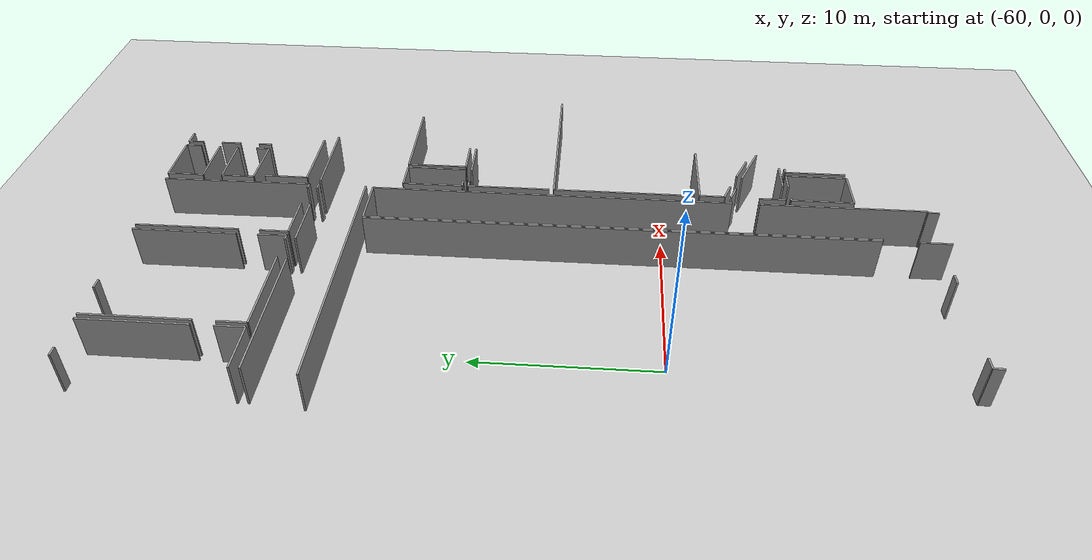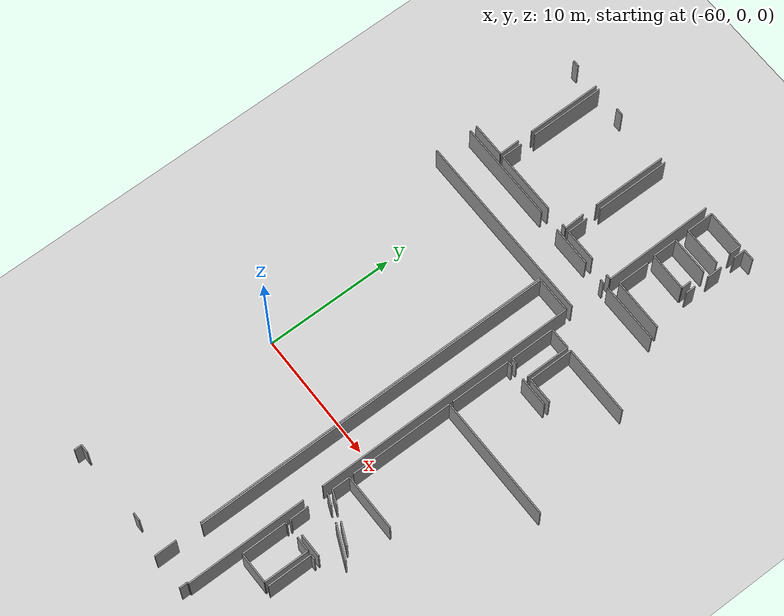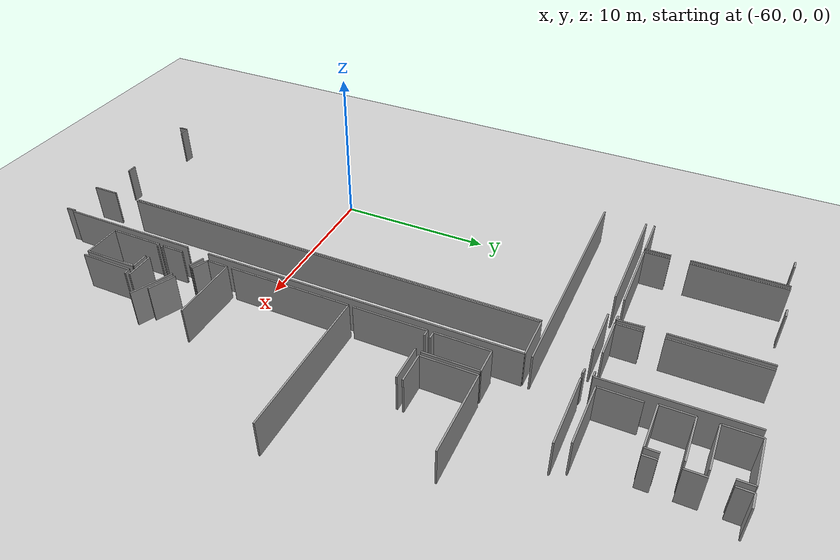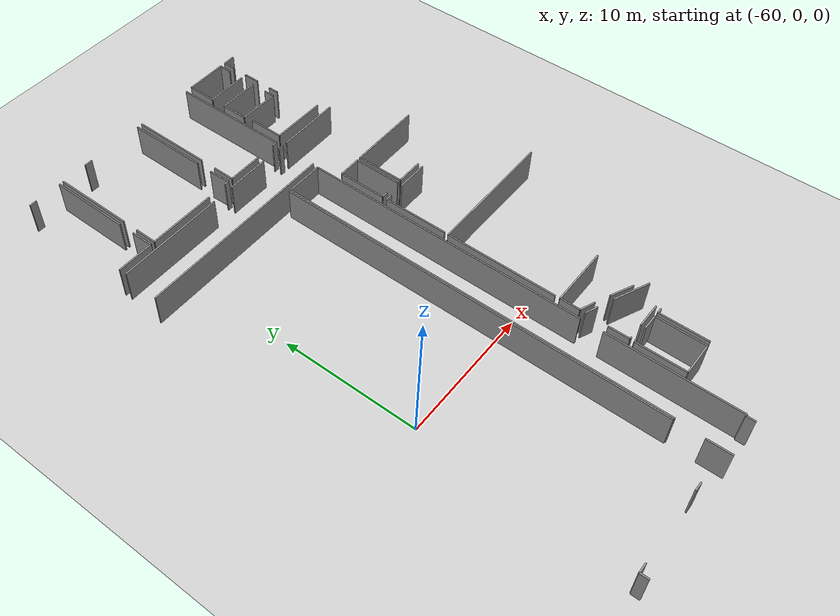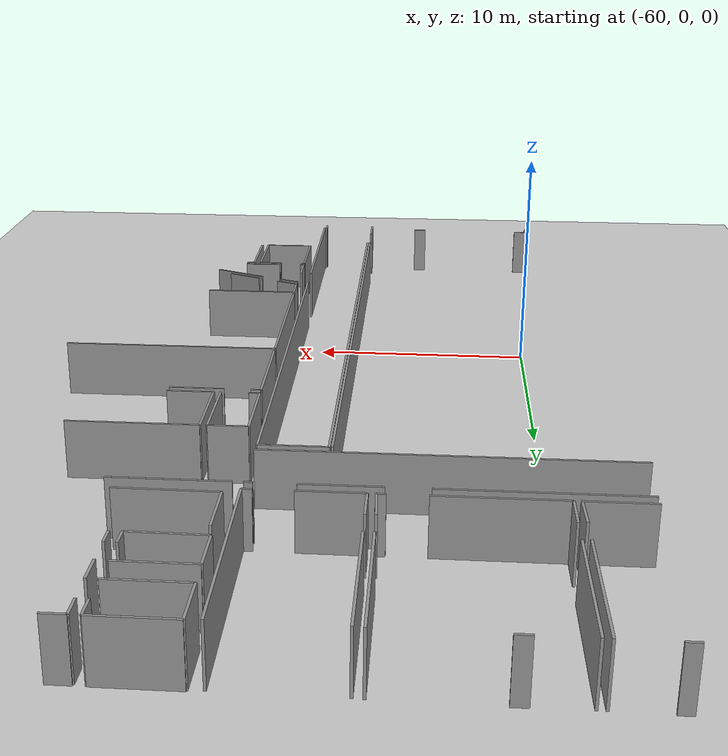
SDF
<sdf version="1.6">
 <world name="default">
  <model name="ground_plane">
   <static>1</static>
   <link name="link">
    <collision name="collision">
     <geometry><plane><normal>0 0 1</normal><size>100 100</size></plane></geometry>
     <surface><friction><ode><mu>100</mu><mu2>50</mu2></ode></friction></surface>
    </collision>
    <visual name="visual">
     <cast_shadows>0</cast_shadows>
     <geometry><plane><normal>0 0 1</normal><size>100 100</size></plane></geometry>
     <material>
      <script><uri>file://media/materials/scripts/gazebo.material</uri><name>Gazebo/Grey</name></script>
     </material>
    </visual>
   </link>
  </model>
  <model name="50010535_PLAN2">
   <static>1</static>
   <link name="Wall_0">
    <collision name="Wall_0_Collision">
     <geometry><box><size>14.9290674257 0.1 2.5</size></box></geometry>
     <pose>7.46453371283 0 1.25 0 0 0</pose>
    </collision>
    <visual name="Wall_0_Visual">
     <pose>7.46453371283 0 1.25 0 0 0</pose>
     <geometry><box><size>14.9290674257 0.1 2.5</size></box></geometry>
     <material>
      <script><uri>file://media/materials/scripts/gazebo.material</uri><name>Gazebo/Grey</name></script>
      <ambient>1 1 1 1</ambient>
     </material>
    </visual>
    <pose>53.7913762762 -12.5641569729 0 0 0 3.14159265359</pose>
   </link>
   <link name="Wall_16">
    <collision name="Wall_16_Collision">
     <geometry><box><size>7.94648132501 0.1 2.5</size></box></geometry>
     <pose>3.9732406625 0 1.25 0 0 0</pose>
    </collision>
    <visual name="Wall_16_Visual">
     <pose>3.9732406625 0 1.25 0 0 0</pose>
     <geometry><box><size>7.94648132501 0.1 2.5</size></box></geometry>
     <material>
      <script><uri>file://media/materials/scripts/gazebo.material</uri><name>Gazebo/Grey</name></script>
      <ambient>1 1 1 1</ambient>
     </material>
    </visual>
    <pose>39.0742489025 -9.76471858859 0 0 0 0.0</pose>
   </link>
   <link name="Wall_17">
    <collision name="Wall_17_Collision">
     <geometry><box><size>3.15140118041 0.1 2.5</size></box></geometry>
     <pose>1.5757005902 0 1.25 0 0 0</pose>
    </collision>
    <visual name="Wall_17_Visual">
     <pose>1.5757005902 0 1.25 0 0 0</pose>
     <geometry><box><size>3.15140118041 0.1 2.5</size></box></geometry>
     <material>
      <script><uri>file://media/materials/scripts/gazebo.material</uri><name>Gazebo/Grey</name></script>
      <ambient>1 1 1 1</ambient>
     </material>
    </visual>
    <pose>48.6992242842 -9.76471858859 0 0 0 0.0</pose>
   </link>
   <link name="Wall_18">
    <collision name="Wall_18_Collision">
     <geometry><box><size>0.35444510742 0.1 2.5</size></box></geometry>
     <pose>0.17722255371 0 1.25 0 0 0</pose>
    </collision>
    <visual name="Wall_18_Visual">
     <pose>0.17722255371 0 1.25 0 0 0</pose>
     <geometry><box><size>0.35444510742 0.1 2.5</size></box></geometry>
     <material>
      <script><uri>file://media/materials/scripts/gazebo.material</uri><name>Gazebo/Grey</name></script>
      <ambient>1 1 1 1</ambient>
     </material>
    </visual>
    <pose>53.4389052305 -9.76471858859 0 0 0 -0.105589964466</pose>
   </link>
   <link name="Wall_51">
    <collision name="Wall_51_Collision">
     <geometry><box><size>2.72294683075 0.1 2.5</size></box></geometry>
     <pose>1.36147341537 0 1.25 0 0 0</pose>
    </collision>
    <visual name="Wall_51_Visual">
     <pose>1.36147341537 0 1.25 0 0 0</pose>
     <geometry><box><size>2.72294683075 0.1 2.5</size></box></geometry>
     <material>
      <script><uri>file://media/materials/scripts/gazebo.material</uri><name>Gazebo/Grey</name></script>
      <ambient>1 1 1 1</ambient>
     </material>
    </visual>
    <pose>41.7816941227 -9.21885859863 0 0 0 3.14159265359</pose>
   </link>
   <link name="Wall_55">
    <collision name="Wall_55_Collision">
     <geometry><box><size>0.538236247086 0.1 2.5</size></box></geometry>
     <pose>0.269118123543 0 1.25 0 0 0</pose>
    </collision>
    <visual name="Wall_55_Visual">
     <pose>0.269118123543 0 1.25 0 0 0</pose>
     <geometry><box><size>0.538236247086 0.1 2.5</size></box></geometry>
     <material>
      <script><uri>file://media/materials/scripts/gazebo.material</uri><name>Gazebo/Grey</name></script>
      <ambient>1 1 1 1</ambient>
     </material>
    </visual>
    <pose>39.2124927733 -0.585020615871 0 0 0 0.0</pose>
   </link>
   <link name="Wall_56">
    <collision name="Wall_56_Collision">
     <geometry><box><size>5.84977414662 0.1 2.5</size></box></geometry>
     <pose>2.92488707331 0 1.25 0 0 0</pose>
    </collision>
    <visual name="Wall_56_Visual">
     <pose>2.92488707331 0 1.25 0 0 0</pose>
     <geometry><box><size>5.84977414662 0.1 2.5</size></box></geometry>
     <material>
      <script><uri>file://media/materials/scripts/gazebo.material</uri><name>Gazebo/Grey</name></script>
      <ambient>1 1 1 1</ambient>
     </material>
    </visual>
    <pose>41.7504367769 -0.585020615871 0 0 0 -1.57079632679</pose>
   </link>
   <link name="Wall_57">
    <collision name="Wall_57_Collision">
     <geometry><box><size>1.59519327845 0.1 2.5</size></box></geometry>
     <pose>0.797596639227 0 1.25 0 0 0</pose>
    </collision>
    <visual name="Wall_57_Visual">
     <pose>0.797596639227 0 1.25 0 0 0</pose>
     <geometry><box><size>1.59519327845 0.1 2.5</size></box></geometry>
     <material>
      <script><uri>file://media/materials/scripts/gazebo.material</uri><name>Gazebo/Grey</name></script>
      <ambient>1 1 1 1</ambient>
     </material>
    </visual>
    <pose>41.7504367769 -7.62397158885 0 0 0 -1.55120036511</pose>
   </link>
   <link name="Wall_58">
    <collision name="Wall_58_Collision">
     <geometry><box><size>0.350692172322 0.1 2.5</size></box></geometry>
     <pose>0.175346086161 0 1.25 0 0 0</pose>
    </collision>
    <visual name="Wall_58_Visual">
     <pose>0.175346086161 0 1.25 0 0 0</pose>
     <geometry><box><size>0.350692172322 0.1 2.5</size></box></geometry>
     <material>
      <script><uri>file://media/materials/scripts/gazebo.material</uri><name>Gazebo/Grey</name></script>
      <ambient>1 1 1 1</ambient>
     </material>
    </visual>
    <pose>48.9757120258 -9.2203833472 0 0 0 3.14159265359</pose>
   </link>
   <link name="Wall_59">
    <collision name="Wall_59_Collision">
     <geometry><box><size>5.02938317567 0.1 2.5</size></box></geometry>
     <pose>2.51469158784 0 1.25 0 0 0</pose>
    </collision>
    <visual name="Wall_59_Visual">
     <pose>2.51469158784 0 1.25 0 0 0</pose>
     <geometry><box><size>5.02938317567 0.1 2.5</size></box></geometry>
     <material>
      <script><uri>file://media/materials/scripts/gazebo.material</uri><name>Gazebo/Grey</name></script>
      <ambient>1 1 1 1</ambient>
     </material>
    </visual>
    <pose>47.1043372744 -9.2203833472 0 0 0 3.14159265359</pose>
   </link>
   <link name="Wall_60">
    <collision name="Wall_60_Collision">
     <geometry><box><size>1.60403550123 0.1 2.5</size></box></geometry>
     <pose>0.802017750615 0 1.25 0 0 0</pose>
    </collision>
    <visual name="Wall_60_Visual">
     <pose>0.802017750615 0 1.25 0 0 0</pose>
     <geometry><box><size>1.60403550123 0.1 2.5</size></box></geometry>
     <material>
      <script><uri>file://media/materials/scripts/gazebo.material</uri><name>Gazebo/Grey</name></script>
      <ambient>1 1 1 1</ambient>
     </material>
    </visual>
    <pose>42.0749540987 -9.2203833472 0 0 0 1.57079632679</pose>
   </link>
   <link name="Wall_61">
    <collision name="Wall_61_Collision">
     <geometry><box><size>5.83775404535 0.1 2.5</size></box></geometry>
     <pose>2.91887702267 0 1.25 0 0 0</pose>
    </collision>
    <visual name="Wall_61_Visual">
     <pose>2.91887702267 0 1.25 0 0 0</pose>
     <geometry><box><size>5.83775404535 0.1 2.5</size></box></geometry>
     <material>
      <script><uri>file://media/materials/scripts/gazebo.material</uri><name>Gazebo/Grey</name></script>
      <ambient>1 1 1 1</ambient>
     </material>
    </visual>
    <pose>42.0749540987 -6.43006804191 0 0 0 1.57079632679</pose>
   </link>
   <link name="Wall_62">
    <collision name="Wall_62_Collision">
     <geometry><box><size>0.601767437724 0.1 2.5</size></box></geometry>
     <pose>0.300883718862 0 1.25 0 0 0</pose>
    </collision>
    <visual name="Wall_62_Visual">
     <pose>0.300883718862 0 1.25 0 0 0</pose>
     <geometry><box><size>0.601767437724 0.1 2.5</size></box></geometry>
     <material>
      <script><uri>file://media/materials/scripts/gazebo.material</uri><name>Gazebo/Grey</name></script>
      <ambient>1 1 1 1</ambient>
     </material>
    </visual>
    <pose>44.0185002827 -0.592313996557 0 0 0 0.0</pose>
   </link>
   <link name="Wall_63">
    <collision name="Wall_63_Collision">
     <geometry><box><size>5.84024446802 0.1 2.5</size></box></geometry>
     <pose>2.92012223401 0 1.25 0 0 0</pose>
    </collision>
    <visual name="Wall_63_Visual">
     <pose>2.92012223401 0 1.25 0 0 0</pose>
     <geometry><box><size>5.84024446802 0.1 2.5</size></box></geometry>
     <material>
      <script><uri>file://media/materials/scripts/gazebo.material</uri><name>Gazebo/Grey</name></script>
      <ambient>1 1 1 1</ambient>
     </material>
    </visual>
    <pose>48.9098937123 -0.592313996557 0 0 0 -1.57079632679</pose>
   </link>
   <link name="Wall_64">
    <collision name="Wall_64_Collision">
     <geometry><box><size>1.59294373125 0.1 2.5</size></box></geometry>
     <pose>0.796471865623 0 1.25 0 0 0</pose>
    </collision>
    <visual name="Wall_64_Visual">
     <pose>0.796471865623 0 1.25 0 0 0</pose>
     <geometry><box><size>1.59294373125 0.1 2.5</size></box></geometry>
     <material>
      <script><uri>file://media/materials/scripts/gazebo.material</uri><name>Gazebo/Grey</name></script>
      <ambient>1 1 1 1</ambient>
     </material>
    </visual>
    <pose>48.9098937123 -7.62879995934 0 0 0 -1.52946589279</pose>
   </link>
   <link name="Wall_65">
    <collision name="Wall_65_Collision">
     <geometry><box><size>0.392368633381 0.1 2.5</size></box></geometry>
     <pose>0.19618431669 0 1.25 0 0 0</pose>
    </collision>
    <visual name="Wall_65_Visual">
     <pose>0.19618431669 0 1.25 0 0 0</pose>
     <geometry><box><size>0.392368633381 0.1 2.5</size></box></geometry>
     <material>
      <script><uri>file://media/materials/scripts/gazebo.material</uri><name>Gazebo/Grey</name></script>
      <ambient>1 1 1 1</ambient>
     </material>
    </visual>
    <pose>53.7990000191 -9.22699059103 0 0 0 3.14159265359</pose>
   </link>
   <link name="Wall_66">
    <collision name="Wall_66_Collision">
     <geometry><box><size>2.59003957993 0.1 2.5</size></box></geometry>
     <pose>1.29501978997 0 1.25 0 0 0</pose>
    </collision>
    <visual name="Wall_66_Visual">
     <pose>1.29501978997 0 1.25 0 0 0</pose>
     <geometry><box><size>2.59003957993 0.1 2.5</size></box></geometry>
     <material>
      <script><uri>file://media/materials/scripts/gazebo.material</uri><name>Gazebo/Grey</name></script>
      <ambient>1 1 1 1</ambient>
     </material>
    </visual>
    <pose>51.889760678 -9.22699059103 0 0 0 3.14159265359</pose>
   </link>
   <link name="Wall_67">
    <collision name="Wall_67_Collision">
     <geometry><box><size>1.60454375075 0.1 2.5</size></box></geometry>
     <pose>0.802271875377 0 1.25 0 0 0</pose>
    </collision>
    <visual name="Wall_67_Visual">
     <pose>0.802271875377 0 1.25 0 0 0</pose>
     <geometry><box><size>1.60454375075 0.1 2.5</size></box></geometry>
     <material>
      <script><uri>file://media/materials/scripts/gazebo.material</uri><name>Gazebo/Grey</name></script>
      <ambient>1 1 1 1</ambient>
     </material>
    </visual>
    <pose>49.2997210981 -9.22699059103 0 0 0 1.57079632679</pose>
   </link>
   <link name="Wall_68">
    <collision name="Wall_68_Collision">
     <geometry><box><size>5.80713201146 0.1 2.5</size></box></geometry>
     <pose>2.90356600573 0 1.25 0 0 0</pose>
    </collision>
    <visual name="Wall_68_Visual">
     <pose>2.90356600573 0 1.25 0 0 0</pose>
     <geometry><box><size>5.80713201146 0.1 2.5</size></box></geometry>
     <material>
      <script><uri>file://media/materials/scripts/gazebo.material</uri><name>Gazebo/Grey</name></script>
      <ambient>1 1 1 1</ambient>
     </material>
    </visual>
    <pose>49.2997210981 -6.43006804191 0 0 0 1.57079632679</pose>
   </link>
   <link name="Wall_69">
    <collision name="Wall_69_Collision">
     <geometry><box><size>8.60440137667 0.1 2.5</size></box></geometry>
     <pose>4.30220068834 0 1.25 0 0 0</pose>
    </collision>
    <visual name="Wall_69_Visual">
     <pose>4.30220068834 0 1.25 0 0 0</pose>
     <geometry><box><size>8.60440137667 0.1 2.5</size></box></geometry>
     <material>
      <script><uri>file://media/materials/scripts/gazebo.material</uri><name>Gazebo/Grey</name></script>
      <ambient>1 1 1 1</ambient>
     </material>
    </visual>
    <pose>53.7217460912 -0.622936030444 0 0 0 -1.56181778635</pose>
   </link>
   <link name="Wall_72">
    <collision name="Wall_72_Collision">
     <geometry><box><size>0.63226240923 0.1 2.5</size></box></geometry>
     <pose>0.316131204615 0 1.25 0 0 0</pose>
    </collision>
    <visual name="Wall_72_Visual">
     <pose>0.316131204615 0 1.25 0 0 0</pose>
     <geometry><box><size>0.63226240923 0.1 2.5</size></box></geometry>
     <material>
      <script><uri>file://media/materials/scripts/gazebo.material</uri><name>Gazebo/Grey</name></script>
      <ambient>1 1 1 1</ambient>
     </material>
    </visual>
    <pose>48.2379878401 -44.5937879202 0 0 0 3.14159265359</pose>
   </link>
   <link name="Wall_76">
    <collision name="Wall_76_Collision">
     <geometry><box><size>0.668348125512 0.1 2.5</size></box></geometry>
     <pose>0.334174062756 0 1.25 0 0 0</pose>
    </collision>
    <visual name="Wall_76_Visual">
     <pose>0.334174062756 0 1.25 0 0 0</pose>
     <geometry><box><size>0.668348125512 0.1 2.5</size></box></geometry>
     <material>
      <script><uri>file://media/materials/scripts/gazebo.material</uri><name>Gazebo/Grey</name></script>
      <ambient>1 1 1 1</ambient>
     </material>
    </visual>
    <pose>42.2769832849 -44.5777780601 0 0 0 3.14159265359</pose>
   </link>
   <link name="Wall_77">
    <collision name="Wall_77_Collision">
     <geometry><box><size>0.595668443422 0.1 2.5</size></box></geometry>
     <pose>0.297834221711 0 1.25 0 0 0</pose>
    </collision>
    <visual name="Wall_77_Visual">
     <pose>0.297834221711 0 1.25 0 0 0</pose>
     <geometry><box><size>0.595668443422 0.1 2.5</size></box></geometry>
     <material>
      <script><uri>file://media/materials/scripts/gazebo.material</uri><name>Gazebo/Grey</name></script>
      <ambient>1 1 1 1</ambient>
     </material>
    </visual>
    <pose>41.6086351594 -44.5777780601 0 0 0 -1.57079632679</pose>
   </link>
   <link name="Wall_86">
    <collision name="Wall_86_Collision">
     <geometry><box><size>28.5059369898 0.1 2.5</size></box></geometry>
     <pose>14.2529684949 0 1.25 0 0 0</pose>
    </collision>
    <visual name="Wall_86_Visual">
     <pose>14.2529684949 0 1.25 0 0 0</pose>
     <geometry><box><size>28.5059369898 0.1 2.5</size></box></geometry>
     <material>
      <script><uri>file://media/materials/scripts/gazebo.material</uri><name>Gazebo/Grey</name></script>
      <ambient>1 1 1 1</ambient>
     </material>
    </visual>
    <pose>50.8320934163 -12.9966773187 0 0 0 -1.57079632679</pose>
   </link>
   <link name="Wall_87">
    <collision name="Wall_87_Collision">
     <geometry><box><size>1.73954644382 0.1 2.5</size></box></geometry>
     <pose>0.869773221908 0 1.25 0 0 0</pose>
    </collision>
    <visual name="Wall_87_Visual">
     <pose>0.869773221908 0 1.25 0 0 0</pose>
     <geometry><box><size>1.73954644382 0.1 2.5</size></box></geometry>
     <material>
      <script><uri>file://media/materials/scripts/gazebo.material</uri><name>Gazebo/Grey</name></script>
      <ambient>1 1 1 1</ambient>
     </material>
    </visual>
    <pose>50.8320934163 -43.4852957059 0 0 0 -1.56232319137</pose>
   </link>
   <link name="Wall_125">
    <collision name="Wall_125_Collision">
     <geometry><box><size>4.69444673863 0.1 2.5</size></box></geometry>
     <pose>2.34722336931 0 1.25 0 0 0</pose>
    </collision>
    <visual name="Wall_125_Visual">
     <pose>2.34722336931 0 1.25 0 0 0</pose>
     <geometry><box><size>4.69444673863 0.1 2.5</size></box></geometry>
     <material>
      <script><uri>file://media/materials/scripts/gazebo.material</uri><name>Gazebo/Grey</name></script>
      <ambient>1 1 1 1</ambient>
     </material>
    </visual>
    <pose>54.1949263991 -9.77996607434 0 0 0 0.0</pose>
   </link>
   <link name="Wall_142">
    <collision name="Wall_142_Collision">
     <geometry><box><size>2.51276023964 0.1 2.5</size></box></geometry>
     <pose>1.25638011982 0 1.25 0 0 0</pose>
    </collision>
    <visual name="Wall_142_Visual">
     <pose>1.25638011982 0 1.25 0 0 0</pose>
     <geometry><box><size>2.51276023964 0.1 2.5</size></box></geometry>
     <material>
      <script><uri>file://media/materials/scripts/gazebo.material</uri><name>Gazebo/Grey</name></script>
      <ambient>1 1 1 1</ambient>
     </material>
    </visual>
    <pose>54.4399026702 -6.40826413728 0 0 0 -1.57079632679</pose>
   </link>
   <link name="Wall_143">
    <collision name="Wall_143_Collision">
     <geometry><box><size>4.04536231223 0.1 2.5</size></box></geometry>
     <pose>2.02268115612 0 1.25 0 0 0</pose>
    </collision>
    <visual name="Wall_143_Visual">
     <pose>2.02268115612 0 1.25 0 0 0</pose>
     <geometry><box><size>4.04536231223 0.1 2.5</size></box></geometry>
     <material>
      <script><uri>file://media/materials/scripts/gazebo.material</uri><name>Gazebo/Grey</name></script>
      <ambient>1 1 1 1</ambient>
     </material>
    </visual>
    <pose>54.4399026702 -8.92102437692 0 0 0 -0.0100511755185</pose>
   </link>
   <link name="Wall_146">
    <collision name="Wall_146_Collision">
     <geometry><box><size>0.771954791205 0.1 2.5</size></box></geometry>
     <pose>0.385977395602 0 1.25 0 0 0</pose>
    </collision>
    <visual name="Wall_146_Visual">
     <pose>0.385977395602 0 1.25 0 0 0</pose>
     <geometry><box><size>0.771954791205 0.1 2.5</size></box></geometry>
     <material>
      <script><uri>file://media/materials/scripts/gazebo.material</uri><name>Gazebo/Grey</name></script>
      <ambient>1 1 1 1</ambient>
     </material>
    </visual>
    <pose>57.7648710634 -5.79844094458 0 0 0 1.57079632679</pose>
   </link>
   <link name="Wall_147">
    <collision name="Wall_147_Collision">
     <geometry><box><size>1.18765207779 0.1 2.5</size></box></geometry>
     <pose>0.593826038894 0 1.25 0 0 0</pose>
    </collision>
    <visual name="Wall_147_Visual">
     <pose>0.593826038894 0 1.25 0 0 0</pose>
     <geometry><box><size>1.18765207779 0.1 2.5</size></box></geometry>
     <material>
      <script><uri>file://media/materials/scripts/gazebo.material</uri><name>Gazebo/Grey</name></script>
      <ambient>1 1 1 1</ambient>
     </material>
    </visual>
    <pose>57.7648710634 -3.86998977148 0 0 0 1.57079632679</pose>
   </link>
   <link name="Wall_148">
    <collision name="Wall_148_Collision">
     <geometry><box><size>0.909665000032 0.1 2.5</size></box></geometry>
     <pose>0.454832500016 0 1.25 0 0 0</pose>
    </collision>
    <visual name="Wall_148_Visual">
     <pose>0.454832500016 0 1.25 0 0 0</pose>
     <geometry><box><size>0.909665000032 0.1 2.5</size></box></geometry>
     <material>
      <script><uri>file://media/materials/scripts/gazebo.material</uri><name>Gazebo/Grey</name></script>
      <ambient>1 1 1 1</ambient>
     </material>
    </visual>
    <pose>57.7648710634 -1.51997102978 0 0 0 1.57079632679</pose>
   </link>
   <link name="Wall_149">
    <collision name="Wall_149_Collision">
     <geometry><box><size>0.897060411809 0.1 2.5</size></box></geometry>
     <pose>0.448530205905 0 1.25 0 0 0</pose>
    </collision>
    <visual name="Wall_149_Visual">
     <pose>0.448530205905 0 1.25 0 0 0</pose>
     <geometry><box><size>0.897060411809 0.1 2.5</size></box></geometry>
     <material>
      <script><uri>file://media/materials/scripts/gazebo.material</uri><name>Gazebo/Grey</name></script>
      <ambient>1 1 1 1</ambient>
     </material>
    </visual>
    <pose>57.7648710634 -0.610306029745 0 0 0 0.0</pose>
   </link>
   <link name="Wall_152">
    <collision name="Wall_152_Collision">
     <geometry><box><size>0.780035958654 0.1 2.5</size></box></geometry>
     <pose>0.390017979327 0 1.25 0 0 0</pose>
    </collision>
    <visual name="Wall_152_Visual">
     <pose>0.390017979327 0 1.25 0 0 0</pose>
     <geometry><box><size>0.780035958654 0.1 2.5</size></box></geometry>
     <material>
      <script><uri>file://media/materials/scripts/gazebo.material</uri><name>Gazebo/Grey</name></script>
      <ambient>1 1 1 1</ambient>
     </material>
    </visual>
    <pose>57.2962650013 -5.78987694008 0 0 0 1.57079632679</pose>
   </link>
   <link name="Wall_153">
    <collision name="Wall_153_Collision">
     <geometry><box><size>2.99918044764 0.1 2.5</size></box></geometry>
     <pose>1.49959022382 0 1.25 0 0 0</pose>
    </collision>
    <visual name="Wall_153_Visual">
     <pose>1.49959022382 0 1.25 0 0 0</pose>
     <geometry><box><size>2.99918044764 0.1 2.5</size></box></geometry>
     <material>
      <script><uri>file://media/materials/scripts/gazebo.material</uri><name>Gazebo/Grey</name></script>
      <ambient>1 1 1 1</ambient>
     </material>
    </visual>
    <pose>57.2962650013 -3.83428524234 0 0 0 3.14159265359</pose>
   </link>
   <link name="Wall_154">
    <collision name="Wall_154_Collision">
     <geometry><box><size>1.9116535263 0.1 2.5</size></box></geometry>
     <pose>0.955826763149 0 1.25 0 0 0</pose>
    </collision>
    <visual name="Wall_154_Visual">
     <pose>0.955826763149 0 1.25 0 0 0</pose>
     <geometry><box><size>1.9116535263 0.1 2.5</size></box></geometry>
     <material>
      <script><uri>file://media/materials/scripts/gazebo.material</uri><name>Gazebo/Grey</name></script>
      <ambient>1 1 1 1</ambient>
     </material>
    </visual>
    <pose>54.2970845537 -3.83428524234 0 0 0 -1.57079632679</pose>
   </link>
   <link name="Wall_155">
    <collision name="Wall_155_Collision">
     <geometry><box><size>2.99950227878 0.1 2.5</size></box></geometry>
     <pose>1.49975113939 0 1.25 0 0 0</pose>
    </collision>
    <visual name="Wall_155_Visual">
     <pose>1.49975113939 0 1.25 0 0 0</pose>
     <geometry><box><size>2.99950227878 0.1 2.5</size></box></geometry>
     <material>
      <script><uri>file://media/materials/scripts/gazebo.material</uri><name>Gazebo/Grey</name></script>
      <ambient>1 1 1 1</ambient>
     </material>
    </visual>
    <pose>54.2970845537 -5.74593876864 0 0 0 -0.014649011361</pose>
   </link>
   <link name="Wall_156">
    <collision name="Wall_156_Collision">
     <geometry><box><size>0.917136268051 0.1 2.5</size></box></geometry>
     <pose>0.458568134025 0 1.25 0 0 0</pose>
    </collision>
    <visual name="Wall_156_Visual">
     <pose>0.458568134025 0 1.25 0 0 0</pose>
     <geometry><box><size>0.917136268051 0.1 2.5</size></box></geometry>
     <material>
      <script><uri>file://media/materials/scripts/gazebo.material</uri><name>Gazebo/Grey</name></script>
      <ambient>1 1 1 1</ambient>
     </material>
    </visual>
    <pose>57.3359084643 -1.51900535568 0 0 0 1.57079632679</pose>
   </link>
   <link name="Wall_157">
    <collision name="Wall_157_Collision">
     <geometry><box><size>3.0571208935 0.1 2.5</size></box></geometry>
     <pose>1.52856044675 0 1.25 0 0 0</pose>
    </collision>
    <visual name="Wall_157_Visual">
     <pose>1.52856044675 0 1.25 0 0 0</pose>
     <geometry><box><size>3.0571208935 0.1 2.5</size></box></geometry>
     <material>
      <script><uri>file://media/materials/scripts/gazebo.material</uri><name>Gazebo/Grey</name></script>
      <ambient>1 1 1 1</ambient>
     </material>
    </visual>
    <pose>57.3359084643 -0.601869087629 0 0 0 3.14159265359</pose>
   </link>
   <link name="Wall_158">
    <collision name="Wall_158_Collision">
     <geometry><box><size>2.09220917009 0.1 2.5</size></box></geometry>
     <pose>1.04610458505 0 1.25 0 0 0</pose>
    </collision>
    <visual name="Wall_158_Visual">
     <pose>1.04610458505 0 1.25 0 0 0</pose>
     <geometry><box><size>2.09220917009 0.1 2.5</size></box></geometry>
     <material>
      <script><uri>file://media/materials/scripts/gazebo.material</uri><name>Gazebo/Grey</name></script>
      <ambient>1 1 1 1</ambient>
     </material>
    </visual>
    <pose>54.2787875708 -0.601869087629 0 0 0 -1.57079632679</pose>
   </link>
   <link name="Wall_159">
    <collision name="Wall_159_Collision">
     <geometry><box><size>3.05713582578 0.1 2.5</size></box></geometry>
     <pose>1.52856791289 0 1.25 0 0 0</pose>
    </collision>
    <visual name="Wall_159_Visual">
     <pose>1.52856791289 0 1.25 0 0 0</pose>
     <geometry><box><size>3.05713582578 0.1 2.5</size></box></geometry>
     <material>
      <script><uri>file://media/materials/scripts/gazebo.material</uri><name>Gazebo/Grey</name></script>
      <ambient>1 1 1 1</ambient>
     </material>
    </visual>
    <pose>54.2787875708 -2.69407825772 0 0 0 -0.00312550935696</pose>
   </link>
   <link name="Wall_768">
    <collision name="Wall_768_Collision">
     <geometry><box><size>4.71401434534 0.1 2.5</size></box></geometry>
     <pose>2.35700717267 0 1.25 0 0 0</pose>
    </collision>
    <visual name="Wall_768_Visual">
     <pose>2.35700717267 0 1.25 0 0 0</pose>
     <geometry><box><size>4.71401434534 0.1 2.5</size></box></geometry>
     <material>
      <script><uri>file://media/materials/scripts/gazebo.material</uri><name>Gazebo/Grey</name></script>
      <ambient>1 1 1 1</ambient>
     </material>
    </visual>
    <pose>54.2726885765 -23.2152881457 0 0 0 1.57079632679</pose>
   </link>
   <link name="Wall_769">
    <collision name="Wall_769_Collision">
     <geometry><box><size>0.441668837316 0.1 2.5</size></box></geometry>
     <pose>0.220834418658 0 1.25 0 0 0</pose>
    </collision>
    <visual name="Wall_769_Visual">
     <pose>0.220834418658 0 1.25 0 0 0</pose>
     <geometry><box><size>0.441668837316 0.1 2.5</size></box></geometry>
     <material>
      <script><uri>file://media/materials/scripts/gazebo.material</uri><name>Gazebo/Grey</name></script>
      <ambient>1 1 1 1</ambient>
     </material>
    </visual>
    <pose>54.2726885765 -18.5012738004 0 0 0 0.0</pose>
   </link>
   <link name="Wall_770">
    <collision name="Wall_770_Collision">
     <geometry><box><size>2.35116230313 0.1 2.5</size></box></geometry>
     <pose>1.17558115157 0 1.25 0 0 0</pose>
    </collision>
    <visual name="Wall_770_Visual">
     <pose>1.17558115157 0 1.25 0 0 0</pose>
     <geometry><box><size>2.35116230313 0.1 2.5</size></box></geometry>
     <material>
      <script><uri>file://media/materials/scripts/gazebo.material</uri><name>Gazebo/Grey</name></script>
      <ambient>1 1 1 1</ambient>
     </material>
    </visual>
    <pose>55.8459749814 -18.5012738004 0 0 0 0.0</pose>
   </link>
   <link name="Wall_776">
    <collision name="Wall_776_Collision">
     <geometry><box><size>0.467589563096 0.1 2.5</size></box></geometry>
     <pose>0.233794781548 0 1.25 0 0 0</pose>
    </collision>
    <visual name="Wall_776_Visual">
     <pose>0.233794781548 0 1.25 0 0 0</pose>
     <geometry><box><size>0.467589563096 0.1 2.5</size></box></geometry>
     <material>
      <script><uri>file://media/materials/scripts/gazebo.material</uri><name>Gazebo/Grey</name></script>
      <ambient>1 1 1 1</ambient>
     </material>
    </visual>
    <pose>54.7453606348 -18.1343176432 0 0 0 3.14159265359</pose>
   </link>
   <link name="Wall_777">
    <collision name="Wall_777_Collision">
     <geometry><box><size>3.44923540212 0.1 2.5</size></box></geometry>
     <pose>1.72461770106 0 1.25 0 0 0</pose>
    </collision>
    <visual name="Wall_777_Visual">
     <pose>1.72461770106 0 1.25 0 0 0</pose>
     <geometry><box><size>3.44923540212 0.1 2.5</size></box></geometry>
     <material>
      <script><uri>file://media/materials/scripts/gazebo.material</uri><name>Gazebo/Grey</name></script>
      <ambient>1 1 1 1</ambient>
     </material>
    </visual>
    <pose>54.2777710717 -18.1343176432 0 0 0 1.57079632679</pose>
   </link>
   <link name="Wall_778">
    <collision name="Wall_778_Collision">
     <geometry><box><size>1.6551145785 0.1 2.5</size></box></geometry>
     <pose>0.827557289251 0 1.25 0 0 0</pose>
    </collision>
    <visual name="Wall_778_Visual">
     <pose>0.827557289251 0 1.25 0 0 0</pose>
     <geometry><box><size>1.6551145785 0.1 2.5</size></box></geometry>
     <material>
      <script><uri>file://media/materials/scripts/gazebo.material</uri><name>Gazebo/Grey</name></script>
      <ambient>1 1 1 1</ambient>
     </material>
    </visual>
    <pose>54.2777710717 -14.6850822411 0 0 0 0.0</pose>
   </link>
   <link name="Wall_779">
    <collision name="Wall_779_Collision">
     <geometry><box><size>3.44923540212 0.1 2.5</size></box></geometry>
     <pose>1.72461770106 0 1.25 0 0 0</pose>
    </collision>
    <visual name="Wall_779_Visual">
     <pose>1.72461770106 0 1.25 0 0 0</pose>
     <geometry><box><size>3.44923540212 0.1 2.5</size></box></geometry>
     <material>
      <script><uri>file://media/materials/scripts/gazebo.material</uri><name>Gazebo/Grey</name></script>
      <ambient>1 1 1 1</ambient>
     </material>
    </visual>
    <pose>55.9328856502 -14.6850822411 0 0 0 -1.57079632679</pose>
   </link>
   <link name="Wall_781">
    <collision name="Wall_781_Collision">
     <geometry><box><size>1.99843713271 0.1 2.5</size></box></geometry>
     <pose>0.999218566355 0 1.25 0 0 0</pose>
    </collision>
    <visual name="Wall_781_Visual">
     <pose>0.999218566355 0 1.25 0 0 0</pose>
     <geometry><box><size>1.99843713271 0.1 2.5</size></box></geometry>
     <material>
      <script><uri>file://media/materials/scripts/gazebo.material</uri><name>Gazebo/Grey</name></script>
      <ambient>1 1 1 1</ambient>
     </material>
    </visual>
    <pose>58.2301735037 -18.1190701575 0 0 0 3.14159265359</pose>
   </link>
   <link name="Wall_782">
    <collision name="Wall_782_Collision">
     <geometry><box><size>3.45152252498 0.1 2.5</size></box></geometry>
     <pose>1.72576126249 0 1.25 0 0 0</pose>
    </collision>
    <visual name="Wall_782_Visual">
     <pose>1.72576126249 0 1.25 0 0 0</pose>
     <geometry><box><size>3.45152252498 0.1 2.5</size></box></geometry>
     <material>
      <script><uri>file://media/materials/scripts/gazebo.material</uri><name>Gazebo/Grey</name></script>
      <ambient>1 1 1 1</ambient>
     </material>
    </visual>
    <pose>56.231736371 -18.1190701575 0 0 0 1.57079632679</pose>
   </link>
   <link name="Wall_783">
    <collision name="Wall_783_Collision">
     <geometry><box><size>5.47511800919 0.1 2.5</size></box></geometry>
     <pose>2.73755900459 0 1.25 0 0 0</pose>
    </collision>
    <visual name="Wall_783_Visual">
     <pose>2.73755900459 0 1.25 0 0 0</pose>
     <geometry><box><size>5.47511800919 0.1 2.5</size></box></geometry>
     <material>
      <script><uri>file://media/materials/scripts/gazebo.material</uri><name>Gazebo/Grey</name></script>
      <ambient>1 1 1 1</ambient>
     </material>
    </visual>
    <pose>56.231736371 -14.6675476325 0 0 0 0.0</pose>
   </link>
   <link name="Wall_786">
    <collision name="Wall_786_Collision">
     <geometry><box><size>8.06414109007 0.1 2.5</size></box></geometry>
     <pose>4.03207054503 0 1.25 0 0 0</pose>
    </collision>
    <visual name="Wall_786_Visual">
     <pose>4.03207054503 0 1.25 0 0 0</pose>
     <geometry><box><size>8.06414109007 0.1 2.5</size></box></geometry>
     <material>
      <script><uri>file://media/materials/scripts/gazebo.material</uri><name>Gazebo/Grey</name></script>
      <ambient>1 1 1 1</ambient>
     </material>
    </visual>
    <pose>54.2637942098 -31.5592205994 0 0 0 1.57079632679</pose>
   </link>
   <link name="Wall_787">
    <collision name="Wall_787_Collision">
     <geometry><box><size>9.69130194469 0.1 2.5</size></box></geometry>
     <pose>4.84565097234 0 1.25 0 0 0</pose>
    </collision>
    <visual name="Wall_787_Visual">
     <pose>4.84565097234 0 1.25 0 0 0</pose>
     <geometry><box><size>9.69130194469 0.1 2.5</size></box></geometry>
     <material>
      <script><uri>file://media/materials/scripts/gazebo.material</uri><name>Gazebo/Grey</name></script>
      <ambient>1 1 1 1</ambient>
     </material>
    </visual>
    <pose>54.2637942098 -23.4950795093 0 0 0 0.0</pose>
   </link>
   <link name="Wall_804">
    <collision name="Wall_804_Collision">
     <geometry><box><size>28.551679447 0.1 2.5</size></box></geometry>
     <pose>14.2758397235 0 1.25 0 0 0</pose>
    </collision>
    <visual name="Wall_804_Visual">
     <pose>14.2758397235 0 1.25 0 0 0</pose>
     <geometry><box><size>28.551679447 0.1 2.5</size></box></geometry>
     <material>
      <script><uri>file://media/materials/scripts/gazebo.material</uri><name>Gazebo/Grey</name></script>
      <ambient>1 1 1 1</ambient>
     </material>
    </visual>
    <pose>50.9474660585 -41.5564887582 0 0 0 1.57079632679</pose>
   </link>
   <link name="Wall_805">
    <collision name="Wall_805_Collision">
     <geometry><box><size>2.76436916704 0.1 2.5</size></box></geometry>
     <pose>1.38218458352 0 1.25 0 0 0</pose>
    </collision>
    <visual name="Wall_805_Visual">
     <pose>1.38218458352 0 1.25 0 0 0</pose>
     <geometry><box><size>2.76436916704 0.1 2.5</size></box></geometry>
     <material>
      <script><uri>file://media/materials/scripts/gazebo.material</uri><name>Gazebo/Grey</name></script>
      <ambient>1 1 1 1</ambient>
     </material>
    </visual>
    <pose>50.9474660585 -13.0048093111 0 0 0 0.0</pose>
   </link>
   <link name="Wall_806">
    <collision name="Wall_806_Collision">
     <geometry><box><size>20.6849932975 0.1 2.5</size></box></geometry>
     <pose>10.3424966487 0 1.25 0 0 0</pose>
    </collision>
    <visual name="Wall_806_Visual">
     <pose>10.3424966487 0 1.25 0 0 0</pose>
     <geometry><box><size>20.6849932975 0.1 2.5</size></box></geometry>
     <material>
      <script><uri>file://media/materials/scripts/gazebo.material</uri><name>Gazebo/Grey</name></script>
      <ambient>1 1 1 1</ambient>
     </material>
    </visual>
    <pose>53.7118352255 -13.0048093111 0 0 0 -1.57079632679</pose>
   </link>
   <link name="Wall_807">
    <collision name="Wall_807_Collision">
     <geometry><box><size>9.31214779896 0.1 2.5</size></box></geometry>
     <pose>4.65607389948 0 1.25 0 0 0</pose>
    </collision>
    <visual name="Wall_807_Visual">
     <pose>4.65607389948 0 1.25 0 0 0</pose>
     <geometry><box><size>9.31214779896 0.1 2.5</size></box></geometry>
     <material>
      <script><uri>file://media/materials/scripts/gazebo.material</uri><name>Gazebo/Grey</name></script>
      <ambient>1 1 1 1</ambient>
     </material>
    </visual>
    <pose>53.7118352255 -35.2630890136 0 0 0 -1.57079632679</pose>
   </link>
   <link name="Wall_808">
    <collision name="Wall_808_Collision">
     <geometry><box><size>0.112577269811 0.1 2.5</size></box></geometry>
     <pose>0.0562886349053 0 1.25 0 0 0</pose>
    </collision>
    <visual name="Wall_808_Visual">
     <pose>0.0562886349053 0 1.25 0 0 0</pose>
     <geometry><box><size>0.112577269811 0.1 2.5</size></box></geometry>
     <material>
      <script><uri>file://media/materials/scripts/gazebo.material</uri><name>Gazebo/Grey</name></script>
      <ambient>1 1 1 1</ambient>
     </material>
    </visual>
    <pose>53.7118352255 -44.5752368125 0 0 0 3.14159265359</pose>
   </link>
   <link name="Wall_809">
    <collision name="Wall_809_Collision">
     <geometry><box><size>0.63429540733 0.1 2.5</size></box></geometry>
     <pose>0.317147703665 0 1.25 0 0 0</pose>
    </collision>
    <visual name="Wall_809_Visual">
     <pose>0.317147703665 0 1.25 0 0 0</pose>
     <geometry><box><size>0.63429540733 0.1 2.5</size></box></geometry>
     <material>
      <script><uri>file://media/materials/scripts/gazebo.material</uri><name>Gazebo/Grey</name></script>
      <ambient>1 1 1 1</ambient>
     </material>
    </visual>
    <pose>53.5992579557 -44.5752368125 0 0 0 -1.57079632679</pose>
   </link>
   <link name="Wall_811">
    <collision name="Wall_811_Collision">
     <geometry><box><size>1.83579728468 0.1 2.5</size></box></geometry>
     <pose>0.917898642338 0 1.25 0 0 0</pose>
    </collision>
    <visual name="Wall_811_Visual">
     <pose>0.917898642338 0 1.25 0 0 0</pose>
     <geometry><box><size>1.83579728468 0.1 2.5</size></box></geometry>
     <material>
      <script><uri>file://media/materials/scripts/gazebo.material</uri><name>Gazebo/Grey</name></script>
      <ambient>1 1 1 1</ambient>
     </material>
    </visual>
    <pose>57.4022350273 -36.7713194793 0 0 0 3.14159265359</pose>
   </link>
   <link name="Wall_812">
    <collision name="Wall_812_Collision">
     <geometry><box><size>0.174329587111 0.1 2.5</size></box></geometry>
     <pose>0.0871647935554 0 1.25 0 0 0</pose>
    </collision>
    <visual name="Wall_812_Visual">
     <pose>0.0871647935554 0 1.25 0 0 0</pose>
     <geometry><box><size>0.174329587111 0.1 2.5</size></box></geometry>
     <material>
      <script><uri>file://media/materials/scripts/gazebo.material</uri><name>Gazebo/Grey</name></script>
      <ambient>1 1 1 1</ambient>
     </material>
    </visual>
    <pose>54.4236386854 -36.7713194793 0 0 0 3.14159265359</pose>
   </link>
   <link name="Wall_813">
    <collision name="Wall_813_Collision">
     <geometry><box><size>1.49272885523 0.1 2.5</size></box></geometry>
     <pose>0.746364427616 0 1.25 0 0 0</pose>
    </collision>
    <visual name="Wall_813_Visual">
     <pose>0.746364427616 0 1.25 0 0 0</pose>
     <geometry><box><size>1.49272885523 0.1 2.5</size></box></geometry>
     <material>
      <script><uri>file://media/materials/scripts/gazebo.material</uri><name>Gazebo/Grey</name></script>
      <ambient>1 1 1 1</ambient>
     </material>
    </visual>
    <pose>54.2493090983 -36.7713194793 0 0 0 1.57079632679</pose>
   </link>
   <link name="Wall_814">
    <collision name="Wall_814_Collision">
     <geometry><box><size>0.961965079185 0.1 2.5</size></box></geometry>
     <pose>0.480982539593 0 1.25 0 0 0</pose>
    </collision>
    <visual name="Wall_814_Visual">
     <pose>0.480982539593 0 1.25 0 0 0</pose>
     <geometry><box><size>0.961965079185 0.1 2.5</size></box></geometry>
     <material>
      <script><uri>file://media/materials/scripts/gazebo.material</uri><name>Gazebo/Grey</name></script>
      <ambient>1 1 1 1</ambient>
     </material>
    </visual>
    <pose>54.2493090983 -33.6803999924 0 0 0 -0.3788384856</pose>
   </link>
   <link name="Wall_815">
    <collision name="Wall_815_Collision">
     <geometry><box><size>2.74538152041 0.1 2.5</size></box></geometry>
     <pose>1.37269076021 0 1.25 0 0 0</pose>
    </collision>
    <visual name="Wall_815_Visual">
     <pose>1.37269076021 0 1.25 0 0 0</pose>
     <geometry><box><size>2.74538152041 0.1 2.5</size></box></geometry>
     <material>
      <script><uri>file://media/materials/scripts/gazebo.material</uri><name>Gazebo/Grey</name></script>
      <ambient>1 1 1 1</ambient>
     </material>
    </visual>
    <pose>56.2398683634 -34.4796223706 0 0 0 -0.413910406021</pose>
   </link>
   <link name="Wall_818">
    <collision name="Wall_818_Collision">
     <geometry><box><size>1.76878131545 0.1 2.5</size></box></geometry>
     <pose>0.884390657723 0 1.25 0 0 0</pose>
    </collision>
    <visual name="Wall_818_Visual">
     <pose>0.884390657723 0 1.25 0 0 0</pose>
     <geometry><box><size>1.76878131545 0.1 2.5</size></box></geometry>
     <material>
      <script><uri>file://media/materials/scripts/gazebo.material</uri><name>Gazebo/Grey</name></script>
      <ambient>1 1 1 1</ambient>
     </material>
    </visual>
    <pose>57.9834183592 -34.9009612269 0 0 0 2.7183063687</pose>
   </link>
   <link name="Wall_819">
    <collision name="Wall_819_Collision">
     <geometry><box><size>1.1168432044 0.1 2.5</size></box></geometry>
     <pose>0.558421602202 0 1.25 0 0 0</pose>
    </collision>
    <visual name="Wall_819_Visual">
     <pose>0.558421602202 0 1.25 0 0 0</pose>
     <geometry><box><size>1.1168432044 0.1 2.5</size></box></geometry>
     <material>
      <script><uri>file://media/materials/scripts/gazebo.material</uri><name>Gazebo/Grey</name></script>
      <ambient>1 1 1 1</ambient>
     </material>
    </visual>
    <pose>55.3265439668 -33.7253800753 0 0 0 2.75893138059</pose>
   </link>
   <link name="Wall_820">
    <collision name="Wall_820_Collision">
     <geometry><box><size>1.41496667789 0.1 2.5</size></box></geometry>
     <pose>0.707483338945 0 1.25 0 0 0</pose>
    </collision>
    <visual name="Wall_820_Visual">
     <pose>0.707483338945 0 1.25 0 0 0</pose>
     <geometry><box><size>1.41496667789 0.1 2.5</size></box></geometry>
     <material>
      <script><uri>file://media/materials/scripts/gazebo.material</uri><name>Gazebo/Grey</name></script>
      <ambient>1 1 1 1</ambient>
     </material>
    </visual>
    <pose>54.2904773098 -33.30836134 0 0 0 1.57079632679</pose>
   </link>
   <link name="Wall_821">
    <collision name="Wall_821_Collision">
     <geometry><box><size>4.42202499317 0.1 2.5</size></box></geometry>
     <pose>2.21101249659 0 1.25 0 0 0</pose>
    </collision>
    <visual name="Wall_821_Visual">
     <pose>2.21101249659 0 1.25 0 0 0</pose>
     <geometry><box><size>4.42202499317 0.1 2.5</size></box></geometry>
     <material>
      <script><uri>file://media/materials/scripts/gazebo.material</uri><name>Gazebo/Grey</name></script>
      <ambient>1 1 1 1</ambient>
     </material>
    </visual>
    <pose>54.2904773098 -31.8933946621 0 0 0 0.0</pose>
   </link>
   <link name="Wall_823">
    <collision name="Wall_823_Collision">
     <geometry><box><size>2.42638323285 0.1 2.5</size></box></geometry>
     <pose>1.21319161642 0 1.25 0 0 0</pose>
    </collision>
    <visual name="Wall_823_Visual">
     <pose>1.21319161642 0 1.25 0 0 0</pose>
     <geometry><box><size>2.42638323285 0.1 2.5</size></box></geometry>
     <material>
      <script><uri>file://media/materials/scripts/gazebo.material</uri><name>Gazebo/Grey</name></script>
      <ambient>1 1 1 1</ambient>
     </material>
    </visual>
    <pose>56.6612072197 -40.6111446415 0 0 0 3.14159265359</pose>
   </link>
   <link name="Wall_824">
    <collision name="Wall_824_Collision">
     <geometry><box><size>3.5206444604 0.1 2.5</size></box></geometry>
     <pose>1.7603222302 0 1.25 0 0 0</pose>
    </collision>
    <visual name="Wall_824_Visual">
     <pose>1.7603222302 0 1.25 0 0 0</pose>
     <geometry><box><size>3.5206444604 0.1 2.5</size></box></geometry>
     <material>
      <script><uri>file://media/materials/scripts/gazebo.material</uri><name>Gazebo/Grey</name></script>
      <ambient>1 1 1 1</ambient>
     </material>
    </visual>
    <pose>54.2348239868 -40.6111446415 0 0 0 1.57079632679</pose>
   </link>
   <link name="Wall_825">
    <collision name="Wall_825_Collision">
     <geometry><box><size>0.161115099458 0.1 2.5</size></box></geometry>
     <pose>0.080557549729 0 1.25 0 0 0</pose>
    </collision>
    <visual name="Wall_825_Visual">
     <pose>0.080557549729 0 1.25 0 0 0</pose>
     <geometry><box><size>0.161115099458 0.1 2.5</size></box></geometry>
     <material>
      <script><uri>file://media/materials/scripts/gazebo.material</uri><name>Gazebo/Grey</name></script>
      <ambient>1 1 1 1</ambient>
     </material>
    </visual>
    <pose>54.2348239868 -37.0905001811 0 0 0 0.0</pose>
   </link>
   <link name="Wall_826">
    <collision name="Wall_826_Collision">
     <geometry><box><size>1.15016867531 0.1 2.5</size></box></geometry>
     <pose>0.575084337656 0 1.25 0 0 0</pose>
    </collision>
    <visual name="Wall_826_Visual">
     <pose>0.575084337656 0 1.25 0 0 0</pose>
     <geometry><box><size>1.15016867531 0.1 2.5</size></box></geometry>
     <material>
      <script><uri>file://media/materials/scripts/gazebo.material</uri><name>Gazebo/Grey</name></script>
      <ambient>1 1 1 1</ambient>
     </material>
    </visual>
    <pose>55.5280649035 -37.0905001811 0 0 0 0.0</pose>
   </link>
   <link name="Wall_827">
    <collision name="Wall_827_Collision">
     <geometry><box><size>3.52068563116 0.1 2.5</size></box></geometry>
     <pose>1.76034281558 0 1.25 0 0 0</pose>
    </collision>
    <visual name="Wall_827_Visual">
     <pose>1.76034281558 0 1.25 0 0 0</pose>
     <geometry><box><size>3.52068563116 0.1 2.5</size></box></geometry>
     <material>
      <script><uri>file://media/materials/scripts/gazebo.material</uri><name>Gazebo/Grey</name></script>
      <ambient>1 1 1 1</ambient>
     </material>
    </visual>
    <pose>56.6782335788 -37.0905001811 0 0 0 -1.5756324375</pose>
   </link>
   <link name="Wall_829">
    <collision name="Wall_829_Collision">
     <geometry><box><size>3.48989536413 0.1 2.5</size></box></geometry>
     <pose>1.74494768206 0 1.25 0 0 0</pose>
    </collision>
    <visual name="Wall_829_Visual">
     <pose>1.74494768206 0 1.25 0 0 0</pose>
     <geometry><box><size>3.48989536413 0.1 2.5</size></box></geometry>
     <material>
      <script><uri>file://media/materials/scripts/gazebo.material</uri><name>Gazebo/Grey</name></script>
      <ambient>1 1 1 1</ambient>
     </material>
    </visual>
    <pose>57.021556133 -40.5951347814 0 0 0 1.57079632679</pose>
   </link>
   <link name="Wall_830">
    <collision name="Wall_830_Collision">
     <geometry><box><size>0.381187143828 0.1 2.5</size></box></geometry>
     <pose>0.190593571914 0 1.25 0 0 0</pose>
    </collision>
    <visual name="Wall_830_Visual">
     <pose>0.190593571914 0 1.25 0 0 0</pose>
     <geometry><box><size>0.381187143828 0.1 2.5</size></box></geometry>
     <material>
      <script><uri>file://media/materials/scripts/gazebo.material</uri><name>Gazebo/Grey</name></script>
      <ambient>1 1 1 1</ambient>
     </material>
    </visual>
    <pose>57.021556133 -37.1052394173 0 0 0 0.0</pose>
   </link>
   <pose>-102.6 29.7873404573 0 0 0 0</pose>
  </model>
 </world>
</sdf>
